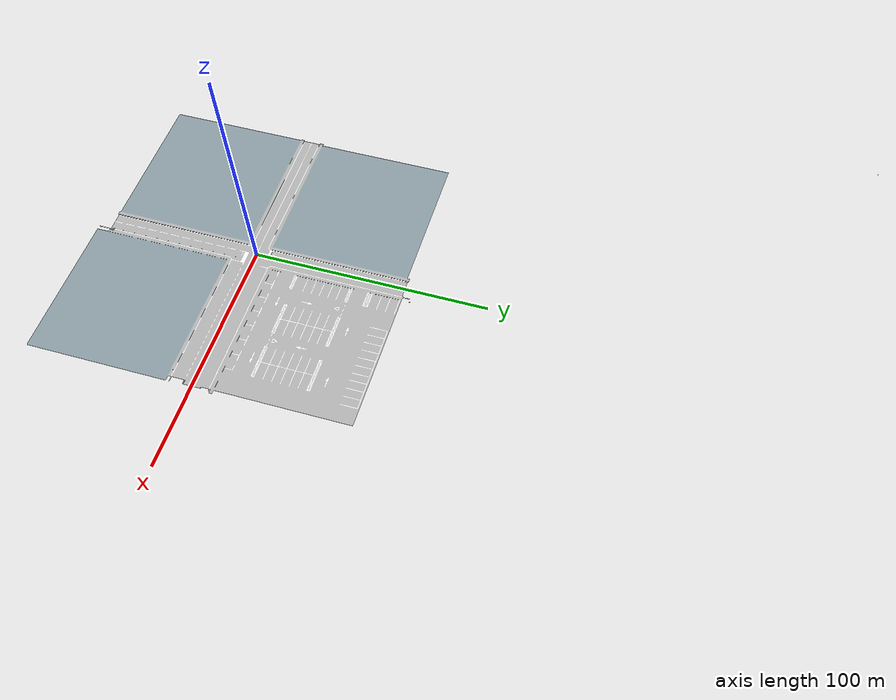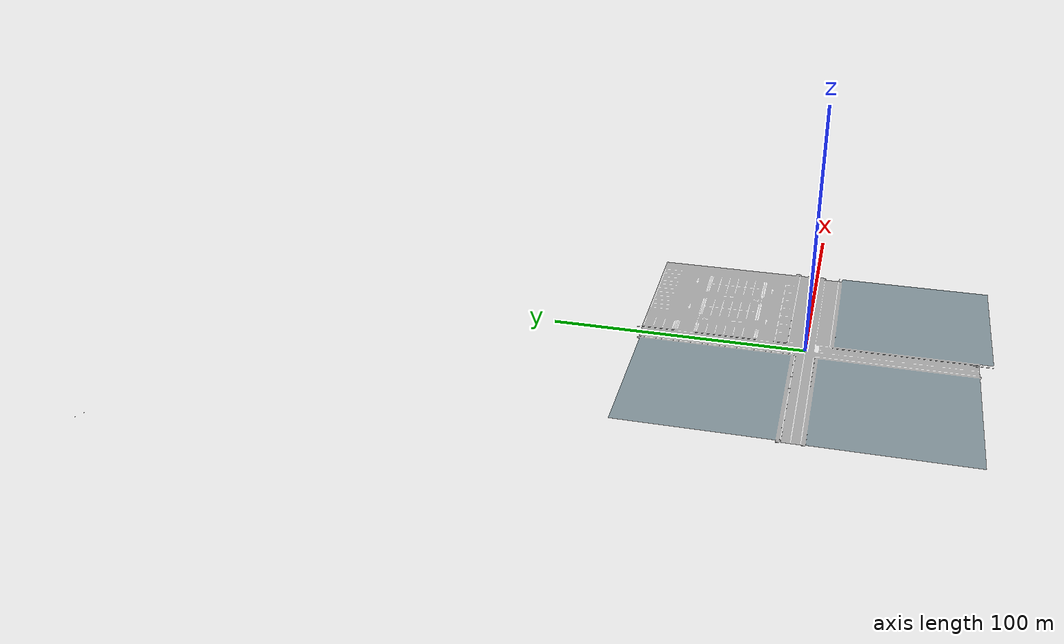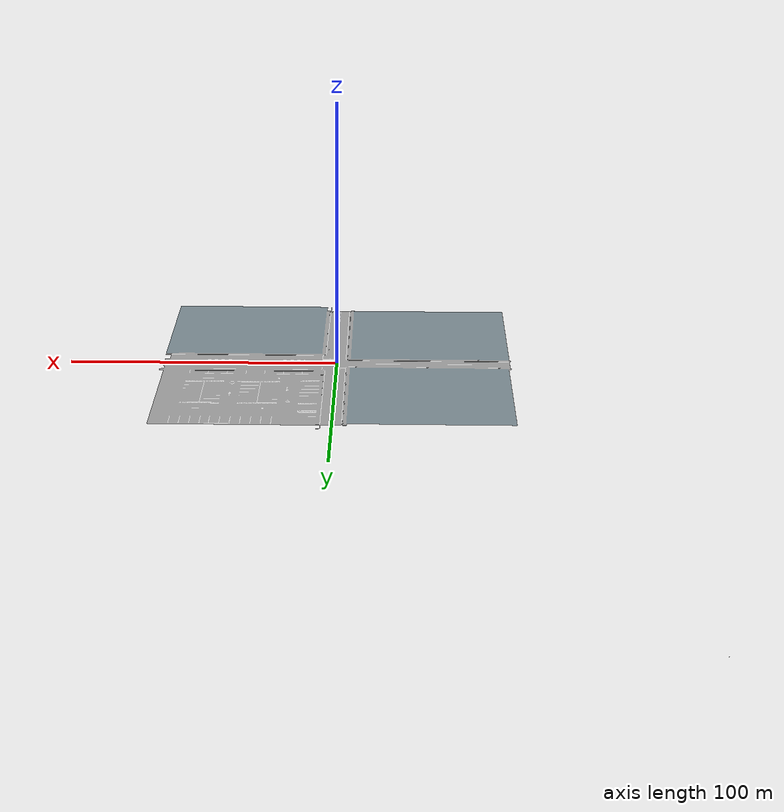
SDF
<?xml version="1.0" ?>
<sdf version="1.5">
  <model name="stop">
    <static>true</static>
    <link name="link">
      <collision name="collision">
        <geometry>
          <plane>
            <normal>0 0 1</normal>
            <size>100 100</size>
          </plane>
        </geometry>
      </collision>
      <visual name="visual">
        <geometry>
          <mesh>
	          <uri>model://parking/meshes/parking.dae</uri>
            <scale>1.3 1.3 1.3</scale>
          </mesh>
        </geometry>
      </visual>
    </link>
  </model>
</sdf>
